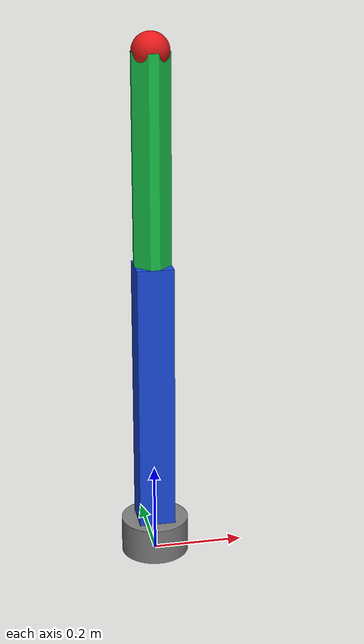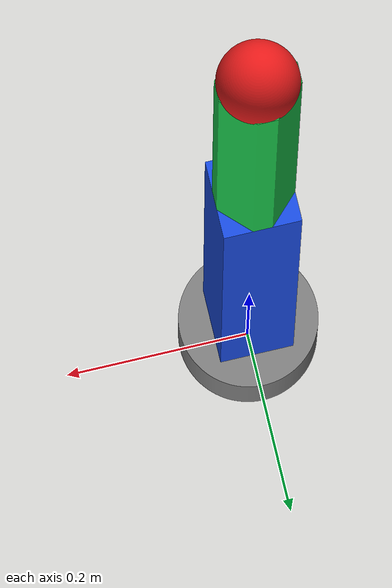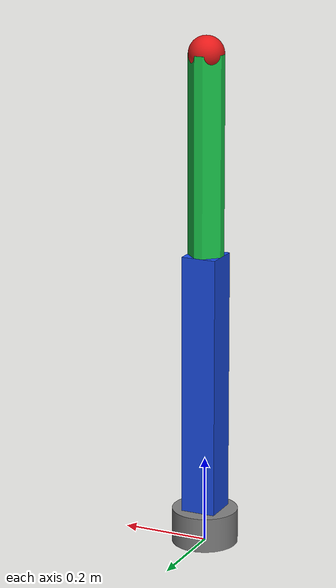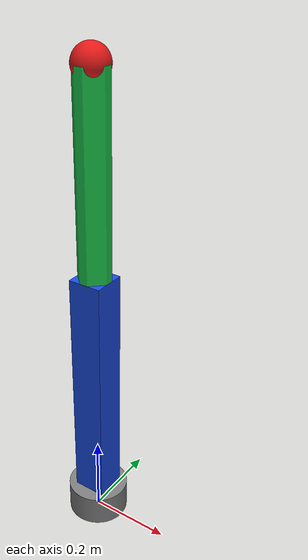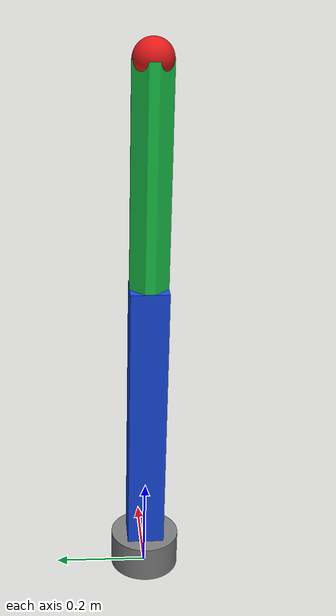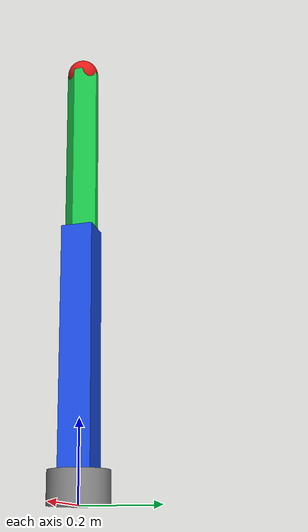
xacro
<?xml version="1.0"?>
<robot name="two_axis_arm_physics" xmlns:xacro="http://www.ros.org/wiki/xacro">

  <!-- Properties -->
  <xacro:property name="base_radius" value="0.15"/>
  <xacro:property name="base_height" value="0.08"/>

  <xacro:property name="link1_length" value="0.6"/>
  <xacro:property name="link2_length" value="0.45"/>
  <xacro:property name="link_width" value="0.08"/>

  <xacro:property name="tool_radius" value="0.04"/>

  <!-- FreeCAD에서 mm 단위로 export한 STL을 m 단위로 줄이기 위한 scale -->
  <xacro:property name="mesh_scale" value="0.001 0.001 0.001"/>

  <!-- Mass values -->
  <xacro:property name="base_mass" value="1.0"/>
  <xacro:property name="link1_mass" value="0.8"/>
  <xacro:property name="link2_mass" value="0.6"/>
  <xacro:property name="tool_mass" value="0.2"/>

  <!-- Inertial Macros -->

  <!-- Box inertial -->
  <xacro:macro name="box_inertial" params="mass x y z origin_xyz">
    <inertial>
      <origin xyz="${origin_xyz}" rpy="0 0 0"/>
      <mass value="${mass}"/>
      <inertia
        ixx="${(1.0/12.0) * mass * (y*y + z*z)}"
        ixy="0.0"
        ixz="0.0"
        iyy="${(1.0/12.0) * mass * (x*x + z*z)}"
        iyz="0.0"
        izz="${(1.0/12.0) * mass * (x*x + y*y)}"/>
    </inertial>
  </xacro:macro>

  <!-- Cylinder inertial, cylinder axis = z -->
  <xacro:macro name="cylinder_inertial" params="mass radius length origin_xyz">
    <inertial>
      <origin xyz="${origin_xyz}" rpy="0 0 0"/>
      <mass value="${mass}"/>
      <inertia
        ixx="${(1.0/12.0) * mass * (3*radius*radius + length*length)}"
        ixy="0.0"
        ixz="0.0"
        iyy="${(1.0/12.0) * mass * (3*radius*radius + length*length)}"
        iyz="0.0"
        izz="${0.5 * mass * radius * radius}"/>
    </inertial>
  </xacro:macro>

  <!-- Sphere inertial -->
  <xacro:macro name="sphere_inertial" params="mass radius origin_xyz">
    <inertial>
      <origin xyz="${origin_xyz}" rpy="0 0 0"/>
      <mass value="${mass}"/>
      <inertia
        ixx="${(2.0/5.0) * mass * radius * radius}"
        ixy="0.0"
        ixz="0.0"
        iyy="${(2.0/5.0) * mass * radius * radius}"
        iyz="0.0"
        izz="${(2.0/5.0) * mass * radius * radius}"/>
    </inertial>
  </xacro:macro>

  <!-- Materials -->
  <material name="gray">
    <color rgba="0.5 0.5 0.5 1.0"/>
  </material>

  <material name="blue">
    <color rgba="0.1 0.3 0.9 1.0"/>
  </material>

  <material name="green">
    <color rgba="0.1 0.8 0.3 1.0"/>
  </material>

  <material name="red">
    <color rgba="0.9 0.1 0.1 1.0"/>
  </material>

  <!-- base_link -->
  <link name="base_link">

    <visual>
      <origin xyz="0 0 0" rpy="0 0 0"/>
      <geometry>
        <mesh filename="package://two_axis_arm_description/meshes/base.stl"
              scale="${mesh_scale}"/>
      </geometry>
      <material name="gray"/>
    </visual>

    <collision>
      <origin xyz="0 0 ${base_height / 2}" rpy="0 0 0"/>
      <geometry>
        <cylinder radius="${base_radius}" length="${base_height}"/>
      </geometry>
    </collision>

    <xacro:cylinder_inertial
      mass="${base_mass}"
      radius="${base_radius}"
      length="${base_height}"
      origin_xyz="0 0 ${base_height / 2}"/>

  </link>

  <!-- joint1 -->
  <joint name="joint1" type="revolute">
    <parent link="base_link"/>
    <child link="link1"/>

    <!-- base 위쪽에 joint1 배치 -->
    <origin xyz="0 0 ${base_height}" rpy="0 0 0"/>

    <!-- 수직형 로봇팔: y축 기준 회전 -->
    <axis xyz="0 1 0"/>

    <limit lower="-1.57" upper="1.57" effort="10" velocity="1.0"/>
  </joint>

  <!-- link1 -->
  <link name="link1">

    <visual>
      <origin xyz="0 0 0" rpy="0 0 0"/>
      <geometry>
        <mesh filename="package://two_axis_arm_description/meshes/link1.stl"
              scale="${mesh_scale}"/>
      </geometry>
      <material name="blue"/>
    </visual>

    <collision>
      <origin xyz="0 0 ${link1_length / 2}" rpy="0 0 0"/>
      <geometry>
        <box size="${link_width} ${link_width} ${link1_length}"/>
      </geometry>
    </collision>

    <xacro:box_inertial
      mass="${link1_mass}"
      x="${link_width}"
      y="${link_width}"
      z="${link1_length}"
      origin_xyz="0 0 ${link1_length / 2}"/>

  </link>

  <!-- joint2 -->
  <joint name="joint2" type="revolute">
    <parent link="link1"/>
    <child link="link2"/>

    <!-- link1 위쪽 끝에 joint2 배치 -->
    <origin xyz="0 0 ${link1_length}" rpy="0 0 0"/>

    <!-- 수직형 로봇팔: y축 기준 회전 -->
    <axis xyz="0 1 0"/>

    <limit lower="-2.0" upper="2.0" effort="10" velocity="1.0"/>
  </joint>

  <!-- link2 -->
  <link name="link2">

    <visual>
      <origin xyz="0 0 0" rpy="0 0 0"/>
      <geometry>
        <mesh filename="package://two_axis_arm_description/meshes/link2.stl"
              scale="${mesh_scale}"/>
      </geometry>
      <material name="green"/>
    </visual>

    <collision>
      <origin xyz="0 0 ${link2_length / 2}" rpy="0 0 0"/>
      <geometry>
        <box size="${link_width} ${link_width} ${link2_length}"/>
      </geometry>
    </collision>

    <xacro:box_inertial
      mass="${link2_mass}"
      x="${link_width}"
      y="${link_width}"
      z="${link2_length}"
      origin_xyz="0 0 ${link2_length / 2}"/>

  </link>

  <!-- tool_joint -->
  <joint name="tool_joint" type="fixed">
    <parent link="link2"/>
    <child link="tool_link"/>

    <!-- link2 위쪽 끝에 tool_link 배치 -->
    <origin xyz="0 0 ${link2_length}" rpy="0 0 0"/>
  </joint>

  <!-- tool_link -->
  <link name="tool_link">

    <visual>
      <origin xyz="0 0 0" rpy="0 0 0"/>
      <geometry>
        <mesh filename="package://two_axis_arm_description/meshes/tool.stl"
              scale="${mesh_scale}"/>
      </geometry>
      <material name="red"/>
    </visual>

    <collision>
      <origin xyz="0 0 0" rpy="0 0 0"/>
      <geometry>
        <sphere radius="${tool_radius}"/>
      </geometry>
    </collision>

    <xacro:sphere_inertial
      mass="${tool_mass}"
      radius="${tool_radius}"
      origin_xyz="0 0 0"/>

  </link>

</robot>
